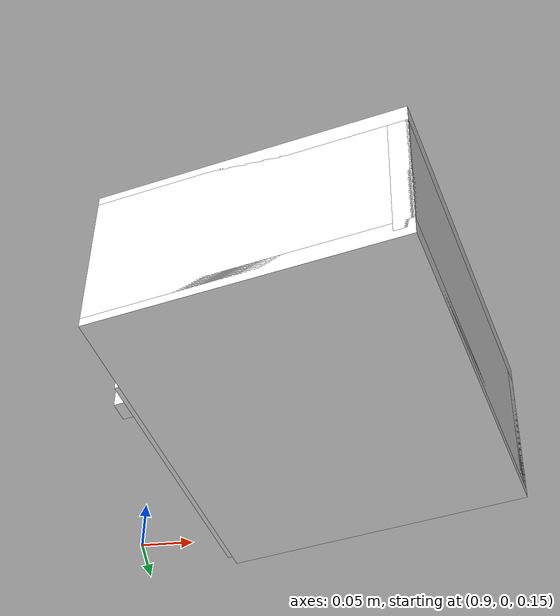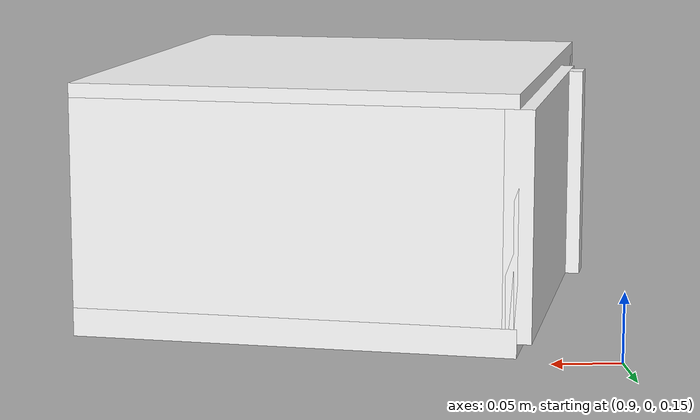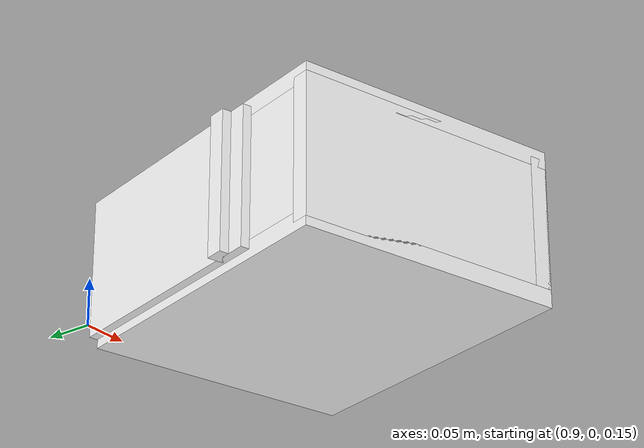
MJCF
<mujoco model="cabinet">
    <compiler angle="radian" eulerseq='zxy' />
    <option gravity = "0 0 0" />
    <option>
        <flag contact = "disable"/>
    </option>
    <statistic	extent="1.0" center="0.0 0.0 0.0"/>
    <visual>
        <map fogstart="3" fogend="5" force="0.1" znear=" 0.100000 " zfar=" 12.000000 "/>
    </visual>
    <size njmax="500" nconmax="100" />
    <actuator>
        <velocity joint="bottom_left_hinge" name="viva_revolution" kv='10'></velocity>
    </actuator>
    <asset>
        <texture builtin="flat" name="tabletex" height="32" width="32" rgb1="1 1 1" type="cube"></texture>
        <texture builtin="flat" name="objtex" height="32" width="32" rgb1="1 1 1" type="cube"></texture>
        <texture builtin="flat" name="handletex" height="32" width="32" rgb1="1 1 1" type="cube"></texture>
        <texture builtin="flat" name="wallpaper" height="32" width="32" rgb1="1 0 0" type="cube"></texture>
        <texture builtin="flat" name="kp" height="32" width="32" rgb1="1 1 1" type="cube"></texture>
        <material name="geomTable" shininess="0.03" specular="0.75" texture="tabletex"></material>
        <material name="geomObj" shininess="0.03" specular="0.75" texture="objtex"></material>
        <material name="geomHandle" shininess="0.03" specular="0.75" texture="handletex"></material>
        <material name="ax" shininess="0.03" specular="0.75" texture="wallpaper"></material>
        <material name="bg" shininess="0.03" specular="0.75" texture="wallpaper"></material>
        <material name="geomKeypad" shininess="0.03" specular="0.75" texture="kp"></material>
    </asset>
    <worldbody>
        <body name="cabinet_bottom" pos= " 1.084124 -0.144643 0.181511 "  quat= " 0.130329 0.000000 0.000000 0.991471" >
            <inertial pos="0 0 0" mass="1" diaginertia="1 1 1" />
            <geom size= " 0.151546 0.177427 0.009804 "  type="box" material="geomObj" name="b"/>
            <body name="cabinet_left" pos= " 0.000000 -0.167623 0.076946 " >
                <inertial pos="0 0 0" mass="1" diaginertia="1 1 1" />
                <geom size= " 0.151546 0.009804 0.076946 "  type="box" material="geomObj" name="c" />
            </body>
            <body name="cabinet_right" pos= " 0.000000 0.167623 0.076946 " >
                <inertial pos="0 0 0" mass="1" diaginertia="1 1 1" />
                <geom size= " 0.151546 0.009804 0.076946 "  type="box" material="geomObj" name="d" />
            </body>
            <body name="cabinet_top" pos= " 0.000000 0.000000 0.153892 " >
                <inertial pos="0 0 0" mass="1" diaginertia="1 1 1" />
                <geom size= " 0.151546 0.177427 0.009804 "  type="box" material="geomObj" name="e"/>
            </body>
            <body name="cabinet_back" pos= " -0.141742 0.000000 0.076946 "  >
                <inertial pos="0 0 0" mass="1" diaginertia="1 1 1" />
                <geom size= " 0.009804 0.177427 0.076946 "  type="box" material="geomObj" name="f" />
            </body>
            <body name="cabinet_keypad" pos= " 0.009804 0.132070 0.076946 " >
                <inertial pos="0 0 0" mass="1" diaginertia="1 1 1" />
                <geom size= " 0.141742 0.044357 0.067142 "  type="box" material="geomKeypad" name="keypizzlemynizzle" />
            </body>
            <body name="cabinet_left_hinge" pos= " 0.151546 -0.177427 0.076946 " >
                <inertial pos= " 0.000000 0.133070 0.000000 "  mass="1" diaginertia="1 1 1" />
                <joint name="bottom_left_hinge" type="hinge" pos="0 0 0" axis="0 0 1" limited="true" range= "-2.3 0"  />
                <geom size= " 0.009804 0.133070 0.076946 "  pos= " 0.000000 0.133070 0.000000 "  type="box" material="geomObj" name="g"/>
                <body name="handle_link" pos= " 0.010000 0.236141 0.000000 " >
                    <inertial pos="0 0 0" mass="1" diaginertia="1 1 1" />
                    <geom size= " 0.010000 0.010000 0.076946 "  type="box" material="geomHandle" name="h"/>
                </body>
            </body>
        </body>
        <body name="external_camera_body_0" pos="0.0 0 0.00" >
            <camera euler="-1.57 1.57 0.0" fovy=" 54.280851 " name="external_camera_0" pos="0.0 0 0"></camera>
            <inertial pos= " 0.00 0.0 0.000000 " mass="1" diaginertia="1 1 1" />
            <joint name="cam_j" pos="0.0 0 0" axis = "1 0 0" type="free" />
        </body>
    </worldbody>
</mujoco>
